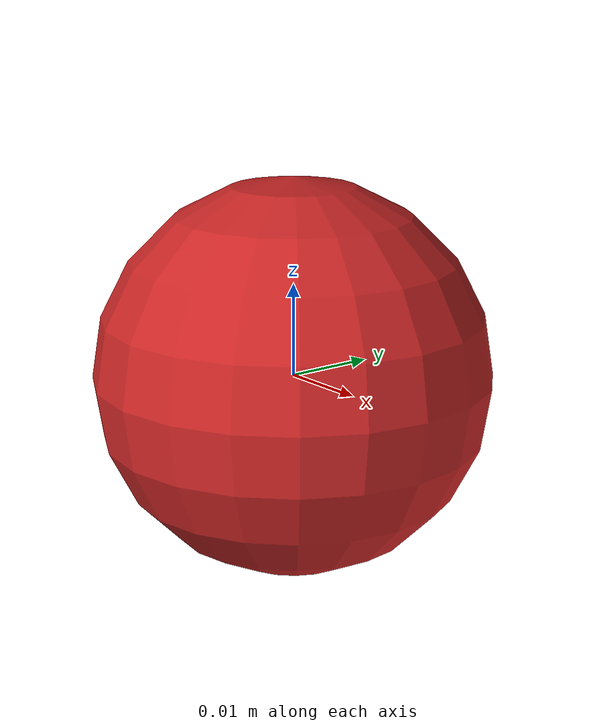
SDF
<?xml version="1.0" ?>
<sdf version="1.4">
  <model name="RoboCup SPL Ball">
    <static>false</static>

    <link name="ball">
      <inertial>
        <mass>0.046</mass>
        <!-- inertia based on solid sphere 2/5 mr^2 -->
        <inertia>
          <ixx>2.37e-6</ixx>
          <iyy>2.37e-6</iyy>
          <izz>2.37e-6</izz>
          <ixy>0</ixy>
          <ixz>0</ixz>
          <iyz>0</iyz>
        </inertia>
      </inertial>
      <collision name="collision">
        <geometry>
          <sphere>
            <radius>0.0215</radius>
          </sphere>
        </geometry>
      </collision>
      <visual name="visual">
        <geometry>
          <sphere>
            <radius>0.0215</radius>
          </sphere>
        </geometry>
        <material>
          <script>
            <uri>file://media/materials/scripts/gazebo.material</uri>
            <name>Gazebo/RedBright</name>
          </script>
        </material>
      </visual>
    </link>

  </model>
</sdf>
